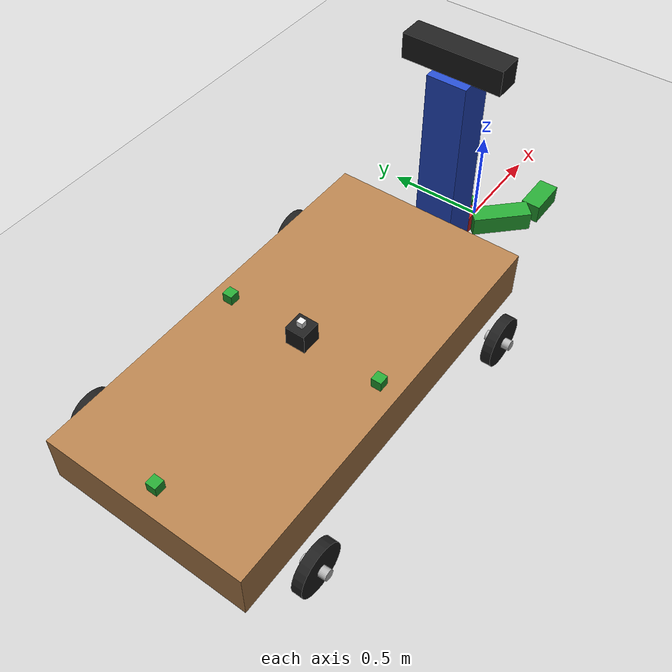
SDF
<sdf version="1.4">
 <world name="default">
  <light name="sun" type="directional">
   <pose>0 0 10 0 -0 0</pose>
   <diffuse>0.8 0.8 0.8 1</diffuse>
   <specular>0.2 0.2 0.2 1</specular>
   <attenuation>
    <range>1000</range>
    <constant>0.9</constant>
    <linear>0.01</linear>
    <quadratic>0.001</quadratic>
   </attenuation>
   <direction>-0.5 0.1 -0.9</direction>
  </light>
  <model name="ground_plane">
   <static>1</static>
   <link name="link">
    <collision name="collision">
     <geometry><plane><normal>0 0 1</normal><size>100 100</size></plane></geometry>
     <surface><friction><ode><mu>100</mu><mu2>50</mu2></ode></friction></surface>
    </collision>
    <visual name="visual">
     <cast_shadows>0</cast_shadows>
     <geometry><plane><normal>0 0 1</normal><size>100 100</size></plane></geometry>
     <material>
      <script><uri>file://media/materials/scripts/gazebo.material</uri><name>Gazebo/Grey</name></script>
     </material>
    </visual>
    <velocity_decay><linear>0</linear><angular>0</angular></velocity_decay>
   </link>
  </model>
  <physics type="ode">
   <max_step_size>0.001</max_step_size>
   <real_time_factor>1</real_time_factor>
   <real_time_update_rate>1000</real_time_update_rate>
   <gravity>0 0 -9.8</gravity>
  </physics>
  <scene><ambient>0.4 0.4 0.4 1</ambient><background>0.7 0.7 0.7 1</background><shadows>1</shadows></scene>
  <spherical_coordinates>
   <surface_model>EARTH_WGS84</surface_model>
   <latitude_deg>0</latitude_deg>
   <longitude_deg>0</longitude_deg>
   <elevation>0</elevation>
   <heading_deg>0</heading_deg>
  </spherical_coordinates>
  <model name="trevor">
   <static>0</static>
   <pose>-1.50671 0.008023 -6e-06 1.5e-05 -1e-06 -0.003533</pose>
   <static>0</static>
   <link name="chassis::platform">
    <pose>0 0 0.25 0 -0 0</pose>
    <inertial>
     <inertia><ixx>0.5</ixx><ixy>0</ixy><ixz>0</ixz><iyy>1</iyy><iyz>0</iyz><izz>0.1</izz></inertia>
     <mass>20</mass>
    </inertial>
    <collision name="platform_collision"><geometry><box><size>2 1 0.25</size></box></geometry></collision>
    <visual name="platform_visual">
     <geometry><box><size>2 1 0.25</size></box></geometry>
     <material>
      <script><uri>file://media/materials/scripts/gazebo.material</uri><name>Gazebo/Wood</name></script>
     </material>
    </visual>
    <velocity_decay><linear>0</linear><angular>0</angular></velocity_decay>
   </link>
   <static>0</static>
   <link name="front_gripper::guide_rail">
    <pose>1.15 0 0.6 0 -0 0</pose>
    <inertial>
     <inertia><ixx>0.3333</ixx><ixy>0</ixy><ixz>0</ixz><iyy>0.3333</iyy><iyz>0</iyz><izz>0.0667</izz></inertia>
     <mass>10</mass>
    </inertial>
    <collision name="guide_rail_collision"><geometry><box><size>0.2 0.2 1</size></box></geometry></collision>
    <visual name="guide_rail_visual">
     <geometry><box><size>0.2 0.2 1</size></box></geometry>
     <material>
      <script><uri>file://media/materials/scripts/gazebo.material</uri><name>Gazebo/Blue</name></script>
     </material>
    </visual>
    <velocity_decay><linear>0</linear><angular>0</angular></velocity_decay>
   </link>
   <link name="front_gripper::palm">
    <pose>1.3 0 0.15 0 -0 0</pose>
    <inertial>
     <inertia><ixx>0.01</ixx><ixy>0</ixy><ixz>0</ixz><iyy>0.01</iyy><iyz>0</iyz><izz>0.01</izz></inertia>
     <mass>0.5</mass>
    </inertial>
    <collision name="palm_collision"><geometry><box><size>0.1 0.2 0.1</size></box></geometry></collision>
    <visual name="palm_visual">
     <geometry><box><size>0.1 0.2 0.1</size></box></geometry>
     <material>
      <script><uri>file://media/materials/scripts/gazebo.material</uri><name>Gazebo/Red</name></script>
     </material>
    </visual>
    <velocity_decay><linear>0</linear><angular>0</angular></velocity_decay>
   </link>
   <link name="front_gripper::left_finger">
    <pose>1.4 0.2 0.15 0 0 -0.78539</pose>
    <inertial>
     <inertia><ixx>0.01</ixx><ixy>0</ixy><ixz>0</ixz><iyy>0.01</iyy><iyz>0</iyz><izz>0.01</izz></inertia>
     <mass>0.1</mass>
    </inertial>
    <collision name="left_finger_collision"><geometry><box><size>0.1 0.3 0.1</size></box></geometry></collision>
    <visual name="left_finger_visual">
     <geometry><box><size>0.1 0.3 0.1</size></box></geometry>
     <material>
      <script><uri>file://media/materials/scripts/gazebo.material</uri><name>Gazebo/Yellow</name></script>
     </material>
    </visual>
    <velocity_decay><linear>0</linear><angular>0</angular></velocity_decay>
   </link>
   <link name="front_gripper::left_finger_tip">
    <pose>1.636 0.3 0.15 0 -0 1.5707</pose>
    <inertial>
     <inertia><ixx>0.01</ixx><ixy>0</ixy><ixz>0</ixz><iyy>0.01</iyy><iyz>0</iyz><izz>0.01</izz></inertia>
     <mass>0.1</mass>
    </inertial>
    <collision name="left_finger_tip_collision">
     <geometry><box><size>0.1 0.2 0.1</size></box></geometry>
    </collision>
    <visual name="left_finger_tip_visual">
     <geometry><box><size>0.1 0.2 0.1</size></box></geometry>
     <material>
      <script><uri>file://media/materials/scripts/gazebo.material</uri><name>Gazebo/Yellow</name></script>
     </material>
    </visual>
    <velocity_decay><linear>0</linear><angular>0</angular></velocity_decay>
   </link>
   <link name="front_gripper::right_finger">
    <pose>1.4 -0.2 0.15 0 -0 0.78539</pose>
    <inertial>
     <inertia><ixx>0.01</ixx><ixy>0</ixy><ixz>0</ixz><iyy>0.01</iyy><iyz>0</iyz><izz>0.01</izz></inertia>
     <mass>0.1</mass>
    </inertial>
    <collision name="right_finger_collision"><geometry><box><size>0.1 0.3 0.1</size></box></geometry></collision>
    <visual name="right_finger_visual">
     <geometry><box><size>0.1 0.3 0.1</size></box></geometry>
     <material>
      <script><uri>file://media/materials/scripts/gazebo.material</uri><name>Gazebo/Green</name></script>
     </material>
    </visual>
    <velocity_decay><linear>0</linear><angular>0</angular></velocity_decay>
   </link>
   <link name="front_gripper::right_finger_tip">
    <pose>1.636 -0.3 0.15 0 -0 1.5707</pose>
    <inertial>
     <inertia><ixx>0.01</ixx><ixy>0</ixy><ixz>0</ixz><iyy>0.01</iyy><iyz>0</iyz><izz>0.01</izz></inertia>
     <mass>0.1</mass>
    </inertial>
    <collision name="tight_finger_tip_collision">
     <geometry><box><size>0.1 0.2 0.1</size></box></geometry>
    </collision>
    <visual name="right_finger_tip_visual">
     <geometry><box><size>0.1 0.2 0.1</size></box></geometry>
     <material>
      <script><uri>file://media/materials/scripts/gazebo.material</uri><name>Gazebo/Green</name></script>
     </material>
    </visual>
    <velocity_decay><linear>0</linear><angular>0</angular></velocity_decay>
   </link>
   <joint name="front_gripper::palm_left_finger" type="revolute">
    <pose>0 -0.15 0 0 -0 0</pose>
    <child>front_gripper::left_finger</child>
    <parent>front_gripper::palm</parent>
    <axis><limit><lower>-0.4</lower><upper>0.4</upper></limit><xyz>0 0 1</xyz></axis>
   </joint>
   <joint name="front_gripper::left_finger_tip" type="revolute">
    <pose>0 0.1 0 0 -0 0</pose>
    <child>front_gripper::left_finger_tip</child>
    <parent>front_gripper::left_finger</parent>
    <axis><limit><lower>-0.4</lower><upper>0.4</upper></limit><xyz>0 0 1</xyz></axis>
   </joint>
   <joint name="front_gripper::palm_right_finger" type="revolute">
    <pose>0 0.15 0 0 -0 0</pose>
    <child>front_gripper::right_finger</child>
    <parent>front_gripper::palm</parent>
    <axis><limit><lower>-0.4</lower><upper>0.4</upper></limit><xyz>0 0 1</xyz></axis>
   </joint>
   <joint name="front_gripper::right_finger_tip" type="revolute">
    <pose>0 0.1 0 0 -0 0</pose>
    <child>front_gripper::right_finger_tip</child>
    <parent>front_gripper::right_finger</parent>
    <axis><limit><lower>-0.4</lower><upper>0.4</upper></limit><xyz>0 0 1</xyz></axis>
   </joint>
   <joint name="front_gripper::palm_riser" type="prismatic">
    <child>front_gripper::palm</child>
    <parent>front_gripper::guide_rail</parent>
    <axis><limit><lower>0</lower><upper>0.9</upper></limit><xyz>0 0 1</xyz></axis>
   </joint>
   <static>0</static>
   <link name="primary_imu::payload">
    <pose>0 0 0.425 0 -0 0</pose>
    <inertial>
     <inertia><ixx>0.0333</ixx><ixy>0</ixy><ixz>0</ixz><iyy>0.0333</iyy><iyz>0</iyz><izz>0.0067</izz></inertia>
     <mass>1</mass>
    </inertial>
    <collision name="payload_collision"><geometry><box><size>0.1 0.1 0.1</size></box></geometry></collision>
    <visual name="payload_visual">
     <geometry><box><size>0.1 0.1 0.1</size></box></geometry>
     <material>
      <script><uri>file://media/materials/scripts/gazebo.material</uri><name>Gazebo/Black</name></script>
     </material>
    </visual>
    <velocity_decay><linear>0</linear><angular>0</angular></velocity_decay>
   </link>
   <link name="primary_imu::imu_sensor">
    <pose>0 0 0.49 0 -0 0</pose>
    <inertial>
     <inertia><ixx>0.001</ixx><ixy>0</ixy><ixz>0</ixz><iyy>0.001</iyy><iyz>0</iyz><izz>0.001</izz></inertia>
     <mass>0.05</mass>
    </inertial>
    <collision name="imu_collision"><geometry><box><size>0.03 0.03 0.03</size></box></geometry></collision>
    <visual name="imu_visual">
     <geometry><box><size>0.03 0.03 0.03</size></box></geometry>
     <material>
      <script><uri>file://media/materials/scripts/gazebo.material</uri><name>Gazebo/White</name></script>
     </material>
    </visual>
    <sensor name="main_imu" type="imu">
     <always_on>1</always_on>
     <update_rate>50</update_rate>
     <visualize>1</visualize>
     <imu>
      <topic>/imu_main/data_raw</topic>
      <noise>
       <type>gaussian</type>
       <rate><mean>0</mean><stddev>0</stddev><bias_mean>0</bias_mean><bias_stddev>0</bias_stddev></rate>
       <accel><mean>0</mean><stddev>0</stddev><bias_mean>0</bias_mean><bias_stddev>0</bias_stddev></accel>
      </noise>
     </imu>
    </sensor>
    <velocity_decay><linear>0</linear><angular>0</angular></velocity_decay>
   </link>
   <joint name="primary_imu::imu_mount" type="revolute">
    <child>primary_imu::imu_sensor</child>
    <parent>primary_imu::payload</parent>
    <axis><limit><lower>0</lower><upper>0</upper></limit><xyz>0 0 1</xyz></axis>
   </joint>
   <static>0</static>
   <link name="stereo::mount">
    <pose>1.1375 0 1.18 0 -0 0</pose>
    <inertial>
     <inertia><ixx>0.01</ixx><ixy>0</ixy><ixz>0</ixz><iyy>0.01</iyy><iyz>0</iyz><izz>0.01</izz></inertia>
     <mass>1</mass>
    </inertial>
    <collision name="housing_collision"><geometry><box><size>0.125 0.5 0.125</size></box></geometry></collision>
    <visual name="housing_visual">
     <geometry><box><size>0.125 0.5 0.125</size></box></geometry>
     <material>
      <script><uri>file://media/materials/scripts/gazebo.material</uri><name>Gazebo/Black</name></script>
     </material>
    </visual>
    <velocity_decay><linear>0</linear><angular>0</angular></velocity_decay>
   </link>
   <link name="stereo::right_camera">
    <pose>1.2 -0.1 1.18 0 1.5707 0</pose>
    <inertial>
     <inertia><ixx>0.01</ixx><ixy>0</ixy><ixz>0</ixz><iyy>0.01</iyy><iyz>0</iyz><izz>0.01</izz></inertia>
     <mass>0.5</mass>
    </inertial>
    <collision name="camera_collision">
     <geometry><cylinder><radius>0.025</radius><length>0.05</length></cylinder></geometry>
    </collision>
    <visual name="camera_visual">
     <geometry><cylinder><radius>0.025</radius><length>0.05</length></cylinder></geometry>
     <material>
      <script><uri>file://media/materials/scripts/gazebo.material</uri><name>Gazebo/Red</name></script>
     </material>
    </visual>
    <sensor name="stereo::right_camera" type="camera">
     <always_on>1</always_on>
     <update_rate>50</update_rate>
     <visualize>0</visualize>
     <pose>0 0 0 3.14159 1.57079 3.14159</pose>
     <camera name="__default__">
      <horizontal_fov>1.047</horizontal_fov>
      <image><width>320</width><height>240</height></image>
      <clip><near>0.1</near><far>100</far></clip>
     </camera>
    </sensor>
    <velocity_decay><linear>0</linear><angular>0</angular></velocity_decay>
   </link>
   <link name="stereo::left_camera">
    <pose>1.2 0.1 1.18 0 1.5707 0</pose>
    <inertial>
     <inertia><ixx>0.01</ixx><ixy>0</ixy><ixz>0</ixz><iyy>0.01</iyy><iyz>0</iyz><izz>0.01</izz></inertia>
     <mass>0.1</mass>
    </inertial>
    <collision name="camera_collision">
     <geometry><cylinder><radius>0.025</radius><length>0.05</length></cylinder></geometry>
    </collision>
    <visual name="camera_visual">
     <geometry><cylinder><radius>0.025</radius><length>0.05</length></cylinder></geometry>
     <material>
      <script><uri>file://media/materials/scripts/gazebo.material</uri><name>Gazebo/Red</name></script>
     </material>
    </visual>
    <sensor name="stereo::left_camera" type="camera">
     <always_on>1</always_on>
     <update_rate>50</update_rate>
     <visualize>0</visualize>
     <pose>0 0 0 3.14159 1.57079 3.14159</pose>
     <camera name="__default__">
      <horizontal_fov>1.047</horizontal_fov>
      <image><width>320</width><height>240</height></image>
      <clip><near>0.1</near><far>100</far></clip>
     </camera>
    </sensor>
    <velocity_decay><linear>0</linear><angular>0</angular></velocity_decay>
   </link>
   <joint name="stereo::right_mount" type="prismatic">
    <child>stereo::right_camera</child>
    <parent>stereo::mount</parent>
    <axis><limit><lower>0</lower><upper>0</upper></limit><xyz>0 0 1</xyz></axis>
   </joint>
   <joint name="stereo::left_mount" type="prismatic">
    <child>stereo::left_camera</child>
    <parent>stereo::mount</parent>
    <axis><limit><lower>0</lower><upper>0</upper></limit><xyz>0 0 1</xyz></axis>
   </joint>
   <static>0</static>
   <link name="left_sensor::sensor_mount">
    <pose>0 -0.4 0.4 0 1.5707 1.5707</pose>
    <inertial>
     <inertia><ixx>0.003</ixx><ixy>0</ixy><ixz>0</ixz><iyy>0.003</iyy><iyz>0</iyz><izz>0.003</izz></inertia>
     <mass>10</mass>
    </inertial>
    <collision name="sensor_mount_collision">
     <geometry><box><size>0.05 0.05 0.05</size></box></geometry>
    </collision>
    <visual name="sensor_mount_visual">
     <geometry><box><size>0.05 0.05 0.05</size></box></geometry>
     <material>
      <script><uri>file://media/materials/scripts/gazebo.material</uri><name>Gazebo/Green</name></script>
     </material>
    </visual>
    <sensor name="ultrasonic" type="sonar">
     <always_on>1</always_on>
     <update_rate>20</update_rate>
     <visualize>1</visualize>
     <sonar><min>0.05</min><max>100</max><radius>2</radius></sonar>
    </sensor>
    <velocity_decay><linear>0</linear><angular>0</angular></velocity_decay>
   </link>
   <static>0</static>
   <link name="right_sensor::sensor_mount">
    <pose>0 0.4 0.4 0 1.5707 -1.5707</pose>
    <inertial>
     <inertia><ixx>0.003</ixx><ixy>0</ixy><ixz>0</ixz><iyy>0.003</iyy><iyz>0</iyz><izz>0.003</izz></inertia>
     <mass>10</mass>
    </inertial>
    <collision name="sensor_mount_collision">
     <geometry><box><size>0.05 0.05 0.05</size></box></geometry>
    </collision>
    <visual name="sensor_mount_visual">
     <geometry><box><size>0.05 0.05 0.05</size></box></geometry>
     <material>
      <script><uri>file://media/materials/scripts/gazebo.material</uri><name>Gazebo/Green</name></script>
     </material>
    </visual>
    <sensor name="ultrasonic" type="sonar">
     <always_on>1</always_on>
     <update_rate>20</update_rate>
     <visualize>1</visualize>
     <sonar><min>0.05</min><max>100</max><radius>2</radius></sonar>
    </sensor>
    <velocity_decay><linear>0</linear><angular>0</angular></velocity_decay>
   </link>
   <static>0</static>
   <link name="front_sensor::sensor_mount">
    <pose>1.425 0 0.145 -4.39666e-18 1.5707 -3.14159</pose>
    <inertial>
     <inertia><ixx>0.003</ixx><ixy>0</ixy><ixz>0</ixz><iyy>0.003</iyy><iyz>0</iyz><izz>0.003</izz></inertia>
     <mass>10</mass>
    </inertial>
    <collision name="sensor_mount_collision">
     <geometry><box><size>0.05 0.05 0.05</size></box></geometry>
    </collision>
    <visual name="sensor_mount_visual">
     <geometry><box><size>0.05 0.05 0.05</size></box></geometry>
     <material>
      <script><uri>file://media/materials/scripts/gazebo.material</uri><name>Gazebo/Green</name></script>
     </material>
    </visual>
    <sensor name="ultrasonic" type="sonar">
     <always_on>1</always_on>
     <update_rate>20</update_rate>
     <visualize>1</visualize>
     <sonar><min>0.05</min><max>100</max><radius>2</radius></sonar>
    </sensor>
    <velocity_decay><linear>0</linear><angular>0</angular></velocity_decay>
   </link>
   <static>0</static>
   <link name="back_sensor::sensor_mount">
    <pose>-0.9 0 0.4 0 1.5707 0</pose>
    <inertial>
     <inertia><ixx>0.003</ixx><ixy>0</ixy><ixz>0</ixz><iyy>0.003</iyy><iyz>0</iyz><izz>0.003</izz></inertia>
     <mass>10</mass>
    </inertial>
    <collision name="sensor_mount_collision">
     <geometry><box><size>0.05 0.05 0.05</size></box></geometry>
    </collision>
    <visual name="sensor_mount_visual">
     <geometry><box><size>0.05 0.05 0.05</size></box></geometry>
     <material>
      <script><uri>file://media/materials/scripts/gazebo.material</uri><name>Gazebo/Green</name></script>
     </material>
    </visual>
    <sensor name="ultrasonic" type="sonar">
     <always_on>1</always_on>
     <update_rate>20</update_rate>
     <visualize>1</visualize>
     <sonar><min>0.05</min><max>100</max><radius>2</radius></sonar>
    </sensor>
    <velocity_decay><linear>0</linear><angular>0</angular></velocity_decay>
   </link>
   <static>0</static>
   <link name="left_rear_wheel::wheel">
    <pose>-0.7 0.6 0.125 -5.76279e-13 1.5707 1.5707</pose>
    <inertial>
     <inertia><ixx>0.0667</ixx><ixy>0</ixy><ixz>0</ixz><iyy>0.0667</iyy><iyz>0</iyz><izz>0.0333</izz></inertia>
     <mass>5</mass>
    </inertial>
    <collision name="wheel_collision">
     <geometry><cylinder><radius>0.125</radius><length>0.05</length></cylinder></geometry>
    </collision>
    <visual name="wheel_visual">
     <geometry><cylinder><radius>0.125</radius><length>0.05</length></cylinder></geometry>
     <material>
      <script><uri>file://media/materials/scripts/gazebo.material</uri><name>Gazebo/Black</name></script>
     </material>
    </visual>
    <velocity_decay><linear>0</linear><angular>0</angular></velocity_decay>
   </link>
   <link name="left_rear_wheel::axle">
    <pose>-0.7 0.6 0.125 1.507 -0 0</pose>
    <inertial>
     <inertia><ixx>0.0067</ixx><ixy>0</ixy><ixz>0</ixz><iyy>0.0067</iyy><iyz>0</iyz><izz>0.0033</izz></inertia>
     <mass>0.5</mass>
    </inertial>
    <collision name="axle_collision">
     <geometry><cylinder><radius>0.025</radius><length>0.125</length></cylinder></geometry>
    </collision>
    <visual name="axle_visual">
     <geometry><cylinder><radius>0.025</radius><length>0.125</length></cylinder></geometry>
    </visual>
    <velocity_decay><linear>0</linear><angular>0</angular></velocity_decay>
   </link>
   <joint name="left_rear_wheel::wheel_axle" type="revolute">
    <child>left_rear_wheel::wheel</child>
    <parent>left_rear_wheel::axle</parent>
    <axis>
     <dynamics><damping>1</damping><friction>1</friction></dynamics>
     <limit><lower>0</lower><upper>0</upper></limit>
     <xyz>0 1 0</xyz>
    </axis>
   </joint>
   <static>0</static>
   <link name="left_front_wheel::wheel">
    <pose>0.7 0.6 0.125 -5.76279e-13 1.5707 1.5707</pose>
    <inertial>
     <inertia><ixx>0.0667</ixx><ixy>0</ixy><ixz>0</ixz><iyy>0.0667</iyy><iyz>0</iyz><izz>0.0333</izz></inertia>
     <mass>5</mass>
    </inertial>
    <collision name="wheel_collision">
     <geometry><cylinder><radius>0.125</radius><length>0.05</length></cylinder></geometry>
    </collision>
    <visual name="wheel_visual">
     <geometry><cylinder><radius>0.125</radius><length>0.05</length></cylinder></geometry>
     <material>
      <script><uri>file://media/materials/scripts/gazebo.material</uri><name>Gazebo/Black</name></script>
     </material>
    </visual>
    <velocity_decay><linear>0</linear><angular>0</angular></velocity_decay>
   </link>
   <link name="left_front_wheel::axle">
    <pose>0.7 0.6 0.125 1.507 -0 0</pose>
    <inertial>
     <inertia><ixx>0.0067</ixx><ixy>0</ixy><ixz>0</ixz><iyy>0.0067</iyy><iyz>0</iyz><izz>0.0033</izz></inertia>
     <mass>0.5</mass>
    </inertial>
    <collision name="axle_collision">
     <geometry><cylinder><radius>0.025</radius><length>0.125</length></cylinder></geometry>
    </collision>
    <visual name="axle_visual">
     <geometry><cylinder><radius>0.025</radius><length>0.125</length></cylinder></geometry>
    </visual>
    <velocity_decay><linear>0</linear><angular>0</angular></velocity_decay>
   </link>
   <joint name="left_front_wheel::wheel_axle" type="revolute">
    <child>left_front_wheel::wheel</child>
    <parent>left_front_wheel::axle</parent>
    <axis>
     <dynamics><damping>1</damping><friction>1</friction></dynamics>
     <limit><lower>0</lower><upper>0</upper></limit>
     <xyz>0 1 0</xyz>
    </axis>
   </joint>
   <static>0</static>
   <link name="right_rear_wheel::wheel">
    <pose>-0.7 -0.6 0.125 -5.76279e-13 1.5707 1.5707</pose>
    <inertial>
     <inertia><ixx>0.0667</ixx><ixy>0</ixy><ixz>0</ixz><iyy>0.0667</iyy><iyz>0</iyz><izz>0.0333</izz></inertia>
     <mass>5</mass>
    </inertial>
    <collision name="wheel_collision">
     <geometry><cylinder><radius>0.125</radius><length>0.05</length></cylinder></geometry>
    </collision>
    <visual name="wheel_visual">
     <geometry><cylinder><radius>0.125</radius><length>0.05</length></cylinder></geometry>
     <material>
      <script><uri>file://media/materials/scripts/gazebo.material</uri><name>Gazebo/Black</name></script>
     </material>
    </visual>
    <velocity_decay><linear>0</linear><angular>0</angular></velocity_decay>
   </link>
   <link name="right_rear_wheel::axle">
    <pose>-0.7 -0.6 0.125 1.507 -0 0</pose>
    <inertial>
     <inertia><ixx>0.0067</ixx><ixy>0</ixy><ixz>0</ixz><iyy>0.0067</iyy><iyz>0</iyz><izz>0.0033</izz></inertia>
     <mass>0.5</mass>
    </inertial>
    <collision name="axle_collision">
     <geometry><cylinder><radius>0.025</radius><length>0.125</length></cylinder></geometry>
    </collision>
    <visual name="axle_visual">
     <geometry><cylinder><radius>0.025</radius><length>0.125</length></cylinder></geometry>
    </visual>
    <velocity_decay><linear>0</linear><angular>0</angular></velocity_decay>
   </link>
   <joint name="right_rear_wheel::wheel_axle" type="revolute">
    <child>right_rear_wheel::wheel</child>
    <parent>right_rear_wheel::axle</parent>
    <axis>
     <dynamics><damping>1</damping><friction>1</friction></dynamics>
     <limit><lower>0</lower><upper>0</upper></limit>
     <xyz>0 1 0</xyz>
    </axis>
   </joint>
   <static>0</static>
   <link name="right_front_wheel::wheel">
    <pose>0.7 -0.6 0.125 -5.76279e-13 1.5707 1.5707</pose>
    <inertial>
     <inertia><ixx>0.0667</ixx><ixy>0</ixy><ixz>0</ixz><iyy>0.0667</iyy><iyz>0</iyz><izz>0.0333</izz></inertia>
     <mass>5</mass>
    </inertial>
    <collision name="wheel_collision">
     <geometry><cylinder><radius>0.125</radius><length>0.05</length></cylinder></geometry>
    </collision>
    <visual name="wheel_visual">
     <geometry><cylinder><radius>0.125</radius><length>0.05</length></cylinder></geometry>
     <material>
      <script><uri>file://media/materials/scripts/gazebo.material</uri><name>Gazebo/Black</name></script>
     </material>
    </visual>
    <velocity_decay><linear>0</linear><angular>0</angular></velocity_decay>
   </link>
   <link name="right_front_wheel::axle">
    <pose>0.7 -0.6 0.125 1.507 -0 0</pose>
    <inertial>
     <inertia><ixx>0.0067</ixx><ixy>0</ixy><ixz>0</ixz><iyy>0.0067</iyy><iyz>0</iyz><izz>0.0033</izz></inertia>
     <mass>0.5</mass>
    </inertial>
    <collision name="axle_collision">
     <geometry><cylinder><radius>0.025</radius><length>0.125</length></cylinder></geometry>
    </collision>
    <visual name="axle_visual">
     <geometry><cylinder><radius>0.025</radius><length>0.125</length></cylinder></geometry>
    </visual>
    <velocity_decay><linear>0</linear><angular>0</angular></velocity_decay>
   </link>
   <joint name="right_front_wheel::wheel_axle" type="revolute">
    <child>right_front_wheel::wheel</child>
    <parent>right_front_wheel::axle</parent>
    <axis>
     <dynamics><damping>1</damping><friction>1</friction></dynamics>
     <limit><lower>0</lower><upper>0</upper></limit>
     <xyz>0 1 0</xyz>
    </axis>
   </joint>
   <joint name="left_rear" type="revolute">
    <child>left_rear_wheel::wheel</child>
    <parent>chassis::platform</parent>
    <axis>
     <dynamics><damping>0.5</damping><friction>0.5</friction></dynamics>
     <xyz>0 1 0</xyz>
     <limit><lower>-1e+16</lower><upper>1e+16</upper></limit>
    </axis>
   </joint>
   <joint name="left_front" type="revolute">
    <child>left_front_wheel::wheel</child>
    <parent>chassis::platform</parent>
    <axis>
     <dynamics><damping>0.5</damping><friction>0.5</friction></dynamics>
     <xyz>0 1 0</xyz>
     <limit><lower>-1e+16</lower><upper>1e+16</upper></limit>
    </axis>
   </joint>
   <joint name="right_rear" type="revolute">
    <child>right_rear_wheel::wheel</child>
    <parent>chassis::platform</parent>
    <axis>
     <dynamics><damping>0.5</damping><friction>0.5</friction></dynamics>
     <xyz>0 1 0</xyz>
     <limit><lower>-1e+16</lower><upper>1e+16</upper></limit>
    </axis>
   </joint>
   <joint name="right_front" type="revolute">
    <child>right_front_wheel::wheel</child>
    <parent>chassis::platform</parent>
    <axis>
     <dynamics><damping>0.5</damping><friction>0.5</friction></dynamics>
     <xyz>0 1 0</xyz>
     <limit><lower>-1e+16</lower><upper>1e+16</upper></limit>
    </axis>
   </joint>
   <plugin name="SkidSteerDrivePlugin" filename="libSkidSteerDrivePlugin.so">
    <right_front>right_front_wheel</right_front>
    <right_rear>right_rear_wheel</right_rear>
    <left_front>left_front_wheel</left_front>
    <left_rear>left_rear_wheel</left_rear>
    <max_force>100.0</max_force>
   </plugin>
   <joint name="chassis_gripper_joint" type="revolute">
    <parent>chassis::platform</parent>
    <child>front_gripper::guide_rail</child>
    <axis><limit><lower>-1</lower><upper>1</upper></limit><xyz>0 0 1</xyz></axis>
   </joint>
   <joint name="chassis_imu_joint" type="revolute">
    <parent>chassis::platform</parent>
    <child>primary_imu::payload</child>
    <axis><limit><lower>0</lower><upper>0</upper></limit><xyz>0 0 1</xyz></axis>
   </joint>
   <joint name="gripper_stereo_joint" type="revolute">
    <parent>front_gripper::guide_rail</parent>
    <child>stereo::mount</child>
    <axis><limit><lower>0</lower><upper>0</upper></limit><xyz>0 0 1</xyz></axis>
   </joint>
   <joint name="chassis_left_sensor_joint" type="revolute">
    <parent>chassis::platform</parent>
    <child>left_sensor::sensor_mount</child>
    <axis><limit><lower>0</lower><upper>0</upper></limit><xyz>0 0 1</xyz></axis>
   </joint>
   <joint name="chassis_right_sensor_joint" type="revolute">
    <parent>chassis::platform</parent>
    <child>right_sensor::sensor_mount</child>
    <axis><limit><lower>0</lower><upper>0</upper></limit><xyz>0 0 1</xyz></axis>
   </joint>
   <joint name="chassis_back_sensor_joint" type="revolute">
    <parent>chassis::platform</parent>
    <child>back_sensor::sensor_mount</child>
    <axis><limit><lower>0</lower><upper>0</upper></limit><xyz>0 0 1</xyz></axis>
   </joint>
   <joint name="gripper_front_sensor_joint" type="revolute">
    <parent>front_gripper::guide_rail</parent>
    <child>front_sensor::sensor_mount</child>
    <axis><limit><lower>0</lower><upper>0</upper></limit><xyz>0 0 1</xyz></axis>
   </joint>
  </model>
 </world>
</sdf>
